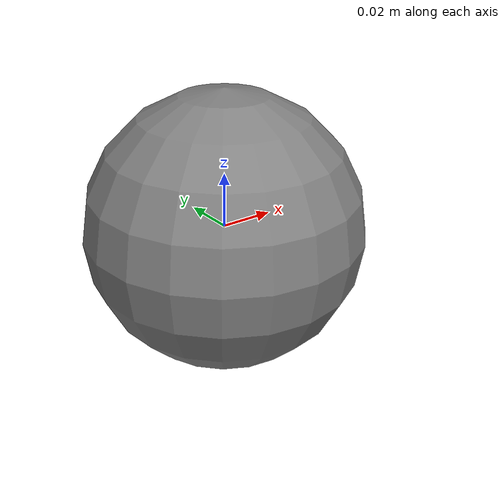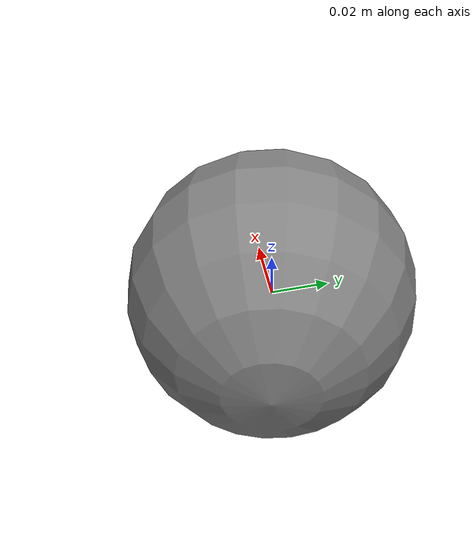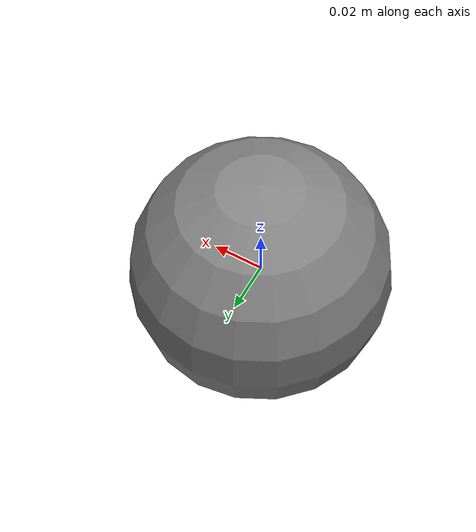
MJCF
<mujoco model="sensor_plugin_load_test">
  <extension>
    <plugin plugin="MujocoRosUtils::SensorPublisher"/>
  </extension>
  <worldbody>
    <body name="sensor_body">
      <geom type="sphere" size="0.05" mass="1"/>
      <site name="sensor_site" size="0.01"/>
    </body>
  </worldbody>
  <sensor>
    <framepos name="load_test_position" objtype="site" objname="sensor_site"/>
    <plugin name="load_test_publisher"
            plugin="MujocoRosUtils::SensorPublisher"
            objtype="site"
            objname="sensor_site">
      <config key="sensor_name" value="load_test_position"/>
      <config key="frame_id" value="world"/>
      <config key="topic_name" value="/plugin_load_test/sensor"/>
      <config key="publish_rate" value="10"/>
    </plugin>
  </sensor>
</mujoco>
